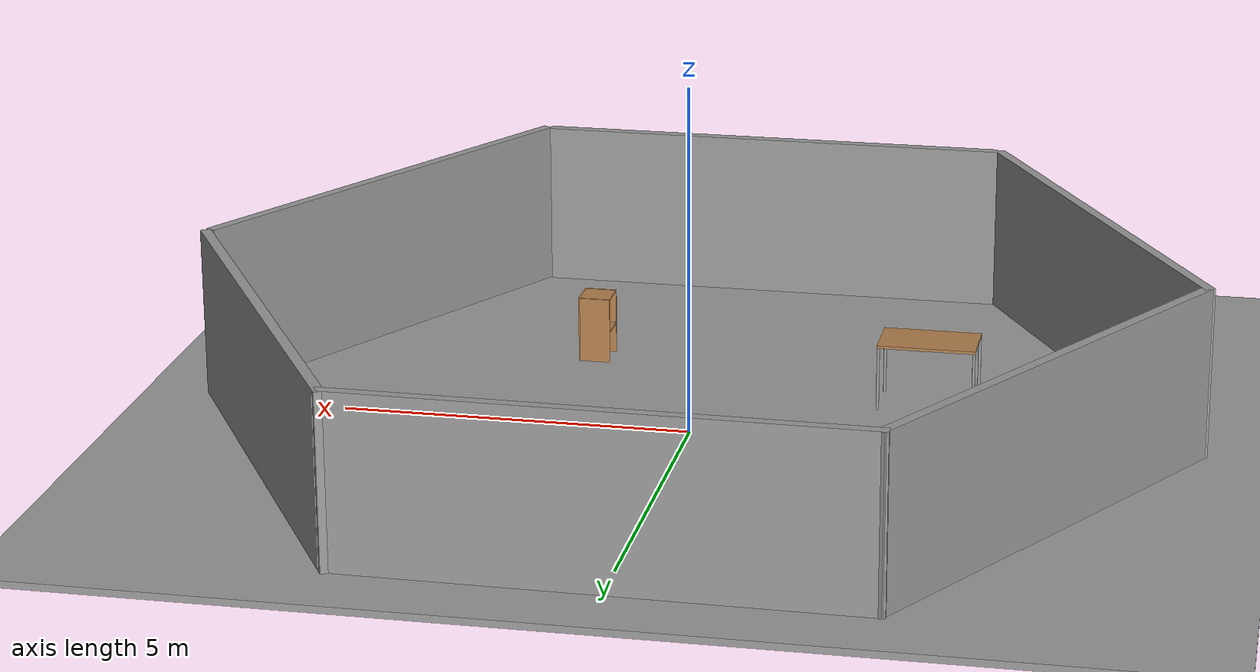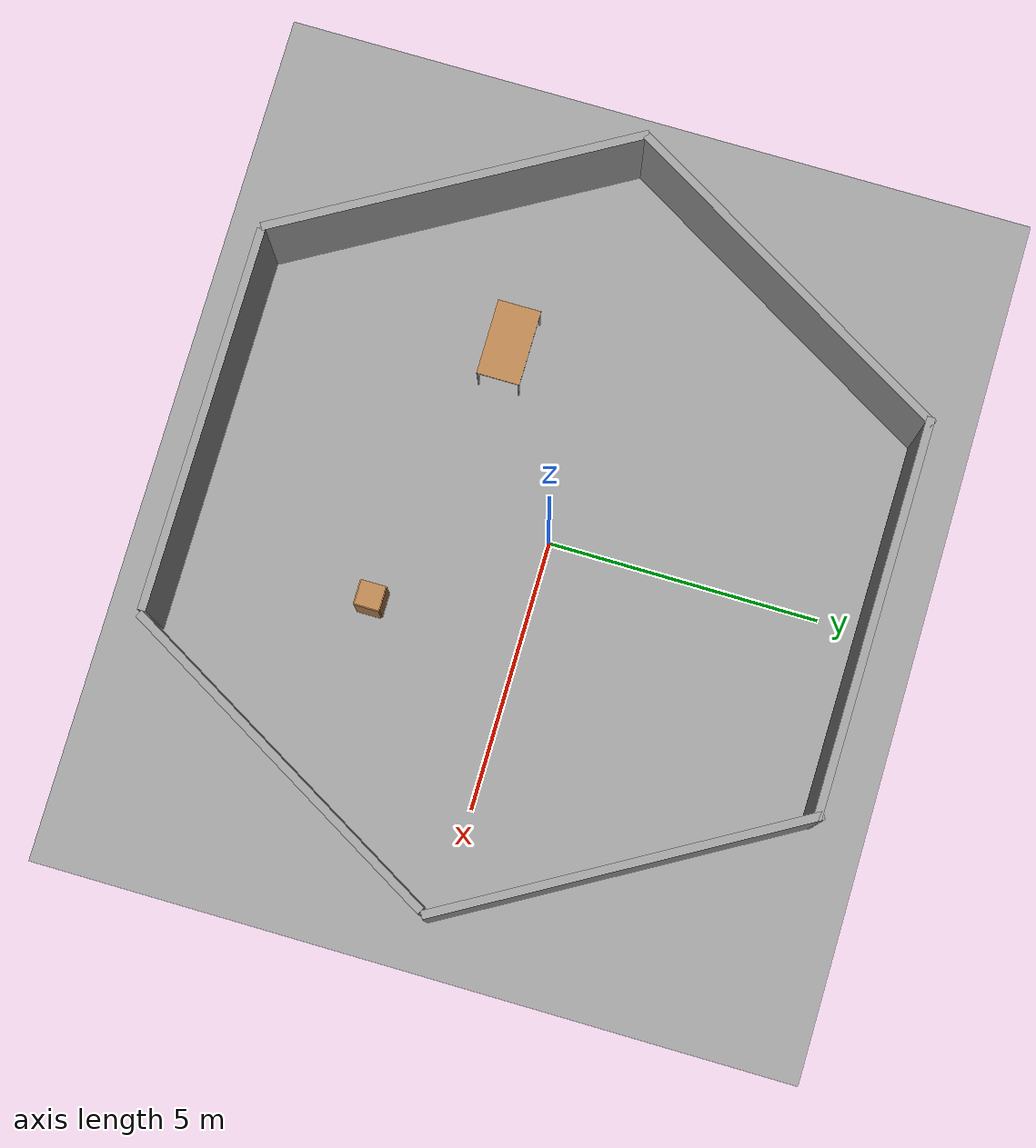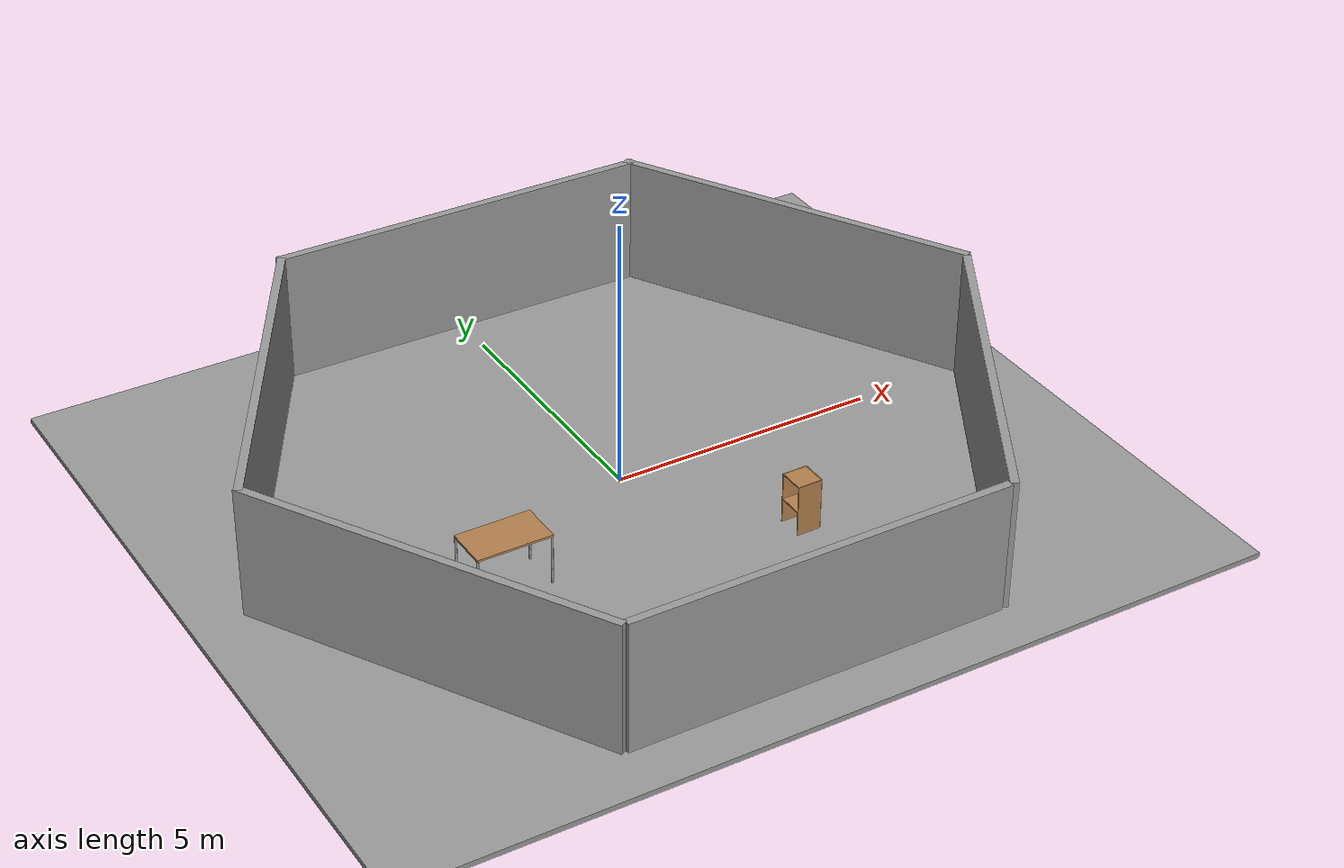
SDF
<sdf version="1.6">
 <world name="default">
  <light name="sun" type="directional">
   <pose>0 0 10 0 -0 0</pose>
   <diffuse>0.8 0.8 0.8 1</diffuse>
   <specular>0.1 0.1 0.1 1</specular>
   <attenuation>
    <range>1000</range>
    <constant>0.9</constant>
    <linear>0.01</linear>
    <quadratic>0.001</quadratic>
   </attenuation>
   <direction>-0.5 0.5 -1</direction>
  </light>
  <model name="ground_plane">
   <static>1</static>
   <link name="link">
    <collision name="collision">
     <geometry><plane><normal>0 0 1</normal><size>100 100</size></plane></geometry>
     <surface><friction><ode><mu>100</mu><mu2>50</mu2></ode></friction></surface>
    </collision>
    <visual name="visual">
     <cast_shadows>0</cast_shadows>
     <geometry><plane><normal>0 0 1</normal><size>100 100</size></plane></geometry>
     <material>
      <script><uri>file://media/materials/scripts/gazebo.material</uri><name>Gazebo/Grey</name></script>
     </material>
    </visual>
   </link>
  </model>
  <gravity>0 0 -9.8</gravity>
  <magnetic_field>6e-06 2.3e-05 -4.2e-05</magnetic_field>
  <atmosphere type="adiabatic"/>
  <physics name="default_physics" default="0" type="ode">
   <max_step_size>0.001</max_step_size>
   <real_time_factor>1</real_time_factor>
   <real_time_update_rate>1000</real_time_update_rate>
  </physics>
  <scene><ambient>0.4 0.4 0.4 1</ambient><background>0.7 0.7 0.7 1</background><shadows>1</shadows></scene>
  <spherical_coordinates>
   <surface_model>EARTH_WGS84</surface_model>
   <latitude_deg>0</latitude_deg>
   <longitude_deg>0</longitude_deg>
   <elevation>0</elevation>
   <heading_deg>0</heading_deg>
  </spherical_coordinates>
  <model name="Untitled">
   <pose>-0.035393 -0.206409 0 0 -0 0</pose>
   <link name="Wall_10">
    <collision name="Wall_10_Collision">
     <geometry><box><size>7.25031 0.15 2.5</size></box></geometry>
     <pose>0 0 1.25 0 -0 0</pose>
    </collision>
    <visual name="Wall_10_Visual">
     <pose>0 0 1.25 0 -0 0</pose>
     <geometry><box><size>7.25031 0.15 2.5</size></box></geometry>
     <material>
      <script><uri>file://media/materials/scripts/gazebo.material</uri><name>Gazebo/Grey</name></script>
      <ambient>1 1 1 1</ambient>
     </material>
    </visual>
    <pose>0.066693 6.00345 0 0 0 -0.009313</pose>
   </link>
   <link name="Wall_11">
    <collision name="Wall_11_Collision">
     <geometry><box><size>7 0.15 2.5</size></box></geometry>
     <pose>0 0 1.25 0 -0 0</pose>
    </collision>
    <visual name="Wall_11_Visual">
     <pose>0 0 1.25 0 -0 0</pose>
     <geometry><box><size>7 0.15 2.5</size></box></geometry>
     <material>
      <script><uri>file://media/materials/scripts/gazebo.material</uri><name>Gazebo/Grey</name></script>
      <ambient>1 1 1 1</ambient>
     </material>
    </visual>
    <pose>5.32919 3.0307 0 0 0 -1.0472</pose>
   </link>
   <link name="Wall_14">
    <collision name="Wall_14_Collision">
     <geometry><box><size>7 0.15 2.5</size></box></geometry>
     <pose>0 0 1.25 0 -0 0</pose>
    </collision>
    <visual name="Wall_14_Visual">
     <pose>0 0 1.25 0 -0 0</pose>
     <geometry><box><size>7 0.15 2.5</size></box></geometry>
     <material>
      <script><uri>file://media/materials/scripts/gazebo.material</uri><name>Gazebo/Grey</name></script>
      <ambient>1 1 1 1</ambient>
     </material>
    </visual>
    <pose>5.26403 -3.05827 0 0 -0 1.0472</pose>
   </link>
   <link name="Wall_16">
    <collision name="Wall_16_Collision">
     <geometry><box><size>7 0.15 2.5</size></box></geometry>
     <pose>0 0 1.25 0 -0 0</pose>
    </collision>
    <visual name="Wall_16_Visual">
     <pose>0 0 1.25 0 -0 0</pose>
     <geometry><box><size>7 0.15 2.5</size></box></geometry>
     <material>
      <script><uri>file://media/materials/scripts/gazebo.material</uri><name>Gazebo/Grey</name></script>
      <ambient>1 1 1 1</ambient>
     </material>
    </visual>
    <pose>-0.045942 -6.06408 0 0 -0 0</pose>
   </link>
   <link name="Wall_18">
    <collision name="Wall_18_Collision">
     <geometry><box><size>7 0.15 2.5</size></box></geometry>
     <pose>0 0 1.25 0 -0 0</pose>
    </collision>
    <visual name="Wall_18_Visual">
     <pose>0 0 1.25 0 -0 0</pose>
     <geometry><box><size>7 0.15 2.5</size></box></geometry>
     <material>
      <script><uri>file://media/materials/scripts/gazebo.material</uri><name>Gazebo/Grey</name></script>
      <ambient>1 1 1 1</ambient>
     </material>
    </visual>
    <pose>-5.32919 -3.05252 0 0 0 -1.0472</pose>
   </link>
   <link name="Wall_20">
    <collision name="Wall_20_Collision">
     <geometry><box><size>7.18621 0.15 2.5</size></box></geometry>
     <pose>0 0 1.25 0 -0 0</pose>
    </collision>
    <visual name="Wall_20_Visual">
     <pose>0 0 1.25 0 -0 0</pose>
     <geometry><box><size>7.18621 0.15 2.5</size></box></geometry>
     <material>
      <script><uri>file://media/materials/scripts/gazebo.material</uri><name>Gazebo/Grey</name></script>
      <ambient>1 1 1 1</ambient>
     </material>
    </visual>
    <pose>-5.25596 2.99763 0 0 0 -2.09886</pose>
   </link>
   <static>1</static>
  </model>
  <model name="cabinet">
   <static>1</static>
   <link name="cabinet_bottom_plate">
    <inertial>
     <pose>0 0 -1 0 -0 0</pose>
     <inertia><ixx>2.05</ixx><ixy>0</ixy><ixz>0</ixz><iyy>2.05</iyy><iyz>0</iyz><izz>2.05</izz></inertia>
     <mass>25</mass>
    </inertial>
    <collision name="cabinet_bottom_plate_geom">
     <pose>0 0 0.01 0 -0 0</pose>
     <geometry><box><size>0.45 0.45 0.02</size></box></geometry>
    </collision>
    <visual name="cabinet_bottom_plate_geom_visual">
     <pose>0 0 0.01 0 -0 0</pose>
     <geometry><box><size>0.45 0.45 0.02</size></box></geometry>
     <material>
      <script><uri>file://media/materials/scripts/gazebo.material</uri><name>Gazebo/Wood</name></script>
     </material>
    </visual>
    <collision name="cabinet_bottom_plate_geom_cabinet_back_plate">
     <pose>0.235 0 0.51 0 -0 0</pose>
     <geometry><box><size>0.02 0.45 1.02</size></box></geometry>
    </collision>
    <visual name="cabinet_bottom_plate_geom_cabinet_back_plate_visual">
     <pose>0.235 0 0.51 0 -0 0</pose>
     <geometry><box><size>0.02 0.45 1.02</size></box></geometry>
     <material>
      <script><uri>file://media/materials/scripts/gazebo.material</uri><name>Gazebo/Wood</name></script>
     </material>
    </visual>
    <collision name="cabinet_bottom_plate_geom_cabinet_left_plate">
     <pose>0 0.235 0.51 0 -0 0</pose>
     <geometry><box><size>0.45 0.02 1.02</size></box></geometry>
    </collision>
    <visual name="cabinet_bottom_plate_geom_cabinet_left_plate_visual">
     <pose>0 0.235 0.51 0 -0 0</pose>
     <geometry><box><size>0.45 0.02 1.02</size></box></geometry>
     <material>
      <script><uri>file://media/materials/scripts/gazebo.material</uri><name>Gazebo/Wood</name></script>
     </material>
    </visual>
    <collision name="cabinet_bottom_plate_geom_cabinet_middle_plate">
     <pose>0 0 0.51 0 -0 0</pose>
     <geometry><box><size>0.45 0.45 0.02</size></box></geometry>
    </collision>
    <visual name="cabinet_bottom_plate_geom_cabinet_middle_plate_visual">
     <pose>0 0 0.51 0 -0 0</pose>
     <geometry><box><size>0.45 0.45 0.02</size></box></geometry>
     <material>
      <script><uri>file://media/materials/scripts/gazebo.material</uri><name>Gazebo/Wood</name></script>
     </material>
    </visual>
    <collision name="cabinet_bottom_plate_geom_cabinet_right_plate">
     <pose>0 -0.235 0.51 0 -0 0</pose>
     <geometry><box><size>0.45 0.02 1.02</size></box></geometry>
    </collision>
    <visual name="cabinet_bottom_plate_geom_cabinet_right_plate_visual">
     <pose>0 -0.235 0.51 0 -0 0</pose>
     <geometry><box><size>0.45 0.02 1.02</size></box></geometry>
     <material>
      <script><uri>file://media/materials/scripts/gazebo.material</uri><name>Gazebo/Wood</name></script>
     </material>
    </visual>
    <collision name="cabinet_bottom_plate_geom_cabinet_top_plate">
     <pose>0 0 1.01 0 -0 0</pose>
     <geometry><box><size>0.45 0.45 0.02</size></box></geometry>
    </collision>
    <visual name="cabinet_bottom_plate_geom_cabinet_top_plate_visual">
     <pose>0 0 1.01 0 -0 0</pose>
     <geometry><box><size>0.45 0.45 0.02</size></box></geometry>
     <material>
      <script><uri>file://media/materials/scripts/gazebo.material</uri><name>Gazebo/Wood</name></script>
     </material>
    </visual>
   </link>
   <pose>1.90664 -2.73371 0 0 -0 0</pose>
  </model>
  <model name="ground_plane_0">
   <static>1</static>
   <link name="link">
    <collision name="collision">
     <geometry><plane><normal>0 0 1</normal><size>100 100</size></plane></geometry>
     <surface><friction><ode><mu>100</mu><mu2>50</mu2></ode></friction></surface>
    </collision>
    <visual name="visual">
     <cast_shadows>0</cast_shadows>
     <geometry><plane><normal>0 0 1</normal><size>100 100</size></plane></geometry>
     <material>
      <script><uri>file://media/materials/scripts/gazebo.material</uri><name>Gazebo/Grey</name></script>
     </material>
    </visual>
   </link>
   <pose>-1.17328 -1.4615 0 0 -0 0</pose>
  </model>
  <model name="table">
   <static>0</static>
   <link name="link">
    <collision name="surface">
     <pose>0 0 1 0 -0 0</pose>
     <geometry><box><size>1.5 0.8 0.03</size></box></geometry>
     <surface><friction><ode><mu>0.6</mu><mu2>0.6</mu2></ode></friction></surface>
    </collision>
    <visual name="visual1">
     <pose>0 0 1 0 -0 0</pose>
     <geometry><box><size>1.4 0.8 0.04</size></box></geometry>
     <material>
      <script><uri>file://media/materials/scripts/gazebo.material</uri><name>Gazebo/Wood</name></script>
     </material>
    </visual>
    <collision name="front_left_leg">
     <pose>0.68 0.38 0.5 0 -0 0</pose>
     <geometry><cylinder><radius>0.02</radius><length>1</length></cylinder></geometry>
    </collision>
    <visual name="front_left_leg">
     <pose>0.68 0.38 0.5 0 -0 0</pose>
     <geometry><cylinder><radius>0.02</radius><length>1</length></cylinder></geometry>
     <material>
      <script><uri>file://media/materials/scripts/gazebo.material</uri><name>Gazebo/Grey</name></script>
     </material>
    </visual>
    <collision name="front_right_leg">
     <pose>0.68 -0.38 0.5 0 -0 0</pose>
     <geometry><cylinder><radius>0.02</radius><length>1</length></cylinder></geometry>
    </collision>
    <visual name="front_right_leg">
     <pose>0.68 -0.38 0.5 0 -0 0</pose>
     <geometry><cylinder><radius>0.02</radius><length>1</length></cylinder></geometry>
     <material>
      <script><uri>file://media/materials/scripts/gazebo.material</uri><name>Gazebo/Grey</name></script>
     </material>
    </visual>
    <collision name="back_right_leg">
     <pose>-0.68 -0.38 0.5 0 -0 0</pose>
     <geometry><cylinder><radius>0.02</radius><length>1</length></cylinder></geometry>
    </collision>
    <visual name="back_right_leg">
     <pose>-0.68 -0.38 0.5 0 -0 0</pose>
     <geometry><cylinder><radius>0.02</radius><length>1</length></cylinder></geometry>
     <material>
      <script><uri>file://media/materials/scripts/gazebo.material</uri><name>Gazebo/Grey</name></script>
     </material>
    </visual>
    <collision name="back_left_leg">
     <pose>-0.68 0.38 0.5 0 -0 0</pose>
     <geometry><cylinder><radius>0.02</radius><length>1</length></cylinder></geometry>
    </collision>
    <visual name="back_left_leg">
     <pose>-0.68 0.38 0.5 0 -0 0</pose>
     <geometry><cylinder><radius>0.02</radius><length>1</length></cylinder></geometry>
     <material>
      <script><uri>file://media/materials/scripts/gazebo.material</uri><name>Gazebo/Grey</name></script>
     </material>
    </visual>
    <inertial>
     <inertia><ixx>1</ixx><ixy>0</ixy><ixz>0</ixz><iyy>1</iyy><iyz>0</iyz><izz>1</izz></inertia>
     <mass>1</mass>
    </inertial>
   </link>
   <pose>-3.15181 -1.66015 -9e-06 0 -1e-06 0</pose>
  </model>
 </world>
</sdf>
